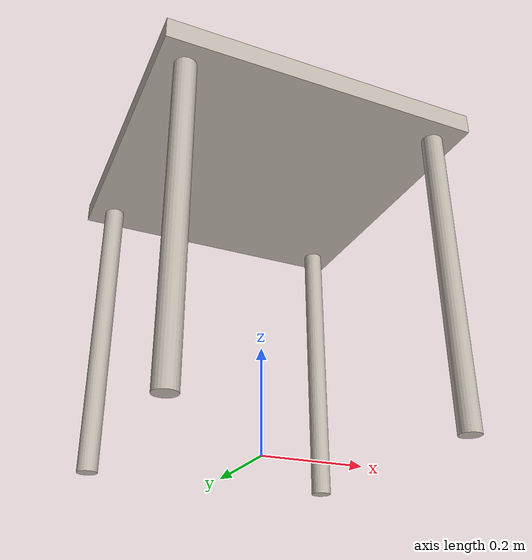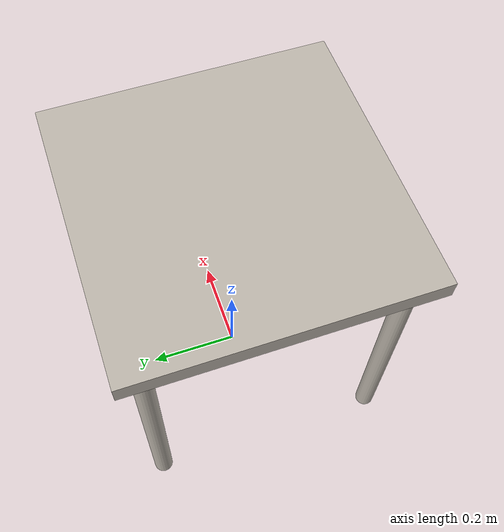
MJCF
<?xml version="1.0" encoding="utf-8"?>
<!-- based on robosuite/models/assets/arenas/table_arena.xml -->

<mujoco model="square_table">
  <asset>
    <!-- ceramic table texture and material-->
    <texture file="../textures/ceramic.png" type="cube" name="tex-ceramic"/>
    <material name="table_ceramic" reflectance="0.0" shininess="0.0" specular="0.2" texrepeat="1 1" texture="tex-ceramic" />
    <!-- steel legs -->
    <texture file="../textures/steel-brushed.png" type="cube" name="tex-steel-brushed"/>
    <material name="table_legs_metal" reflectance="0.8" shininess="0.8" texrepeat="1 1" texture="tex-steel-brushed" />
  </asset>
  <worldbody>
    <body>
      <body name="object">
        <inertial pos="0 0 0" mass="1.47392" diaginertia="0.472637 0.580381 0.109316"/>
        <site name="origin" pos="0 0 0" rgba="0 0 0 0" size="0.005"/>

        <body name="body">
          <geom name="table_top_visual" pos="0 0.0 0.6" size="0.3 0.3 0.02" type="box" friction="1 1 1" group="0" material="table_ceramic"/>
          <geom name="leg1" pos="0.25 0.25 0.3" size="0.02 0.3" type="cylinder" group="0" material="table_legs_metal"/>
          <geom name="leg2" pos="-0.25 0.25 0.3" size="0.02 0.3" type="cylinder" group="0" material="table_legs_metal"/>
          <geom name="leg3" pos="0.25 -0.25 0.3" size="0.02 0.3" type="cylinder" group="0" material="table_legs_metal"/>
          <geom name="leg4" pos="-0.25 -0.25 0.3" size="0.02 0.3" type="cylinder" group="0" material="table_legs_metal"/>
        </body>

      </body>
      <site name="bottom_site" pos="0 0 -0.0207" rgba="0 0 0 0" size="0.005"/>
      <site name="top_site" pos="0 0 0.007" rgba="0 0 0 0" size="0.005"/>
      <site name="horizontal_radius_site" pos="0 0 0" rgba="0 0 0 0" size="0.003"/>
    </body>

  </worldbody>
</mujoco>
